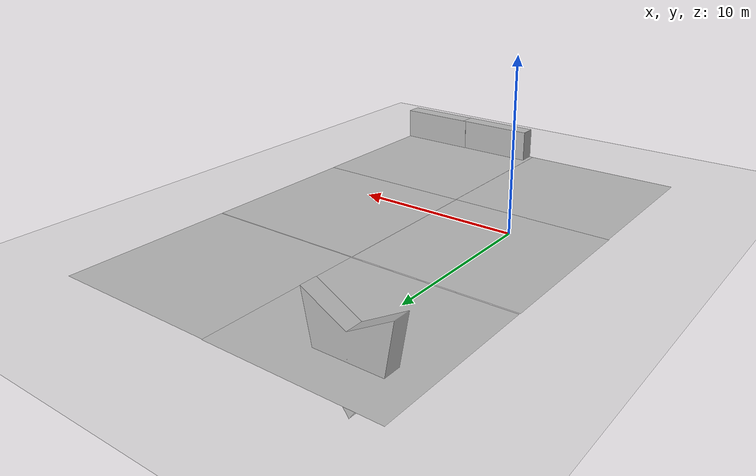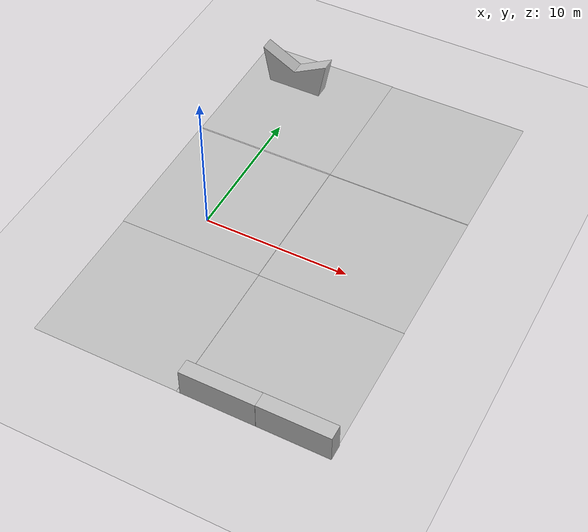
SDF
<sdf version="1.6">
 <world name="default">
  <model name="ground_plane">
   <static>1</static>
   <link name="link">
    <collision name="collision">
     <geometry><plane><normal>0 0 1</normal><size>100 100</size></plane></geometry>
     <surface>
      <contact><collide_bitmask>65535</collide_bitmask></contact>
      <friction><ode><mu>100</mu><mu2>50</mu2></ode></friction>
     </surface>
    </collision>
    <visual name="visual">
     <cast_shadows>0</cast_shadows>
     <geometry><plane><normal>0 0 1</normal><size>100 100</size></plane></geometry>
     <material>
      <script><uri>file://media/materials/scripts/gazebo.material</uri><name>Gazebo/Grey</name></script>
     </material>
    </visual>
   </link>
  </model>
  <gravity>0 0 -9.81</gravity>
  <magnetic_field>6e-06 2.3e-05 -4.2e-05</magnetic_field>
  <atmosphere type="adiabatic"/>
  <physics type="ode">
   <max_step_size>0.0005</max_step_size>
   <real_time_factor>0.4</real_time_factor>
   <real_time_update_rate>800</real_time_update_rate>
   <gravity>0 0 -9.81</gravity>
   <ode>
    <solver><type>quick</type><iters>80</iters><sor>1.3</sor></solver>
    <constraints>
     <cfm>0.0</cfm>
     <erp>0.2</erp>
     <contact_max_correcting_vel>0.1</contact_max_correcting_vel>
     <contact_surface_layer>0.0001</contact_surface_layer>
    </constraints>
   </ode>
  </physics>
  <scene><ambient>0.4 0.4 0.4 1</ambient><background>0.7 0.7 0.7 1</background><shadows>1</shadows></scene>
  <spherical_coordinates>
   <surface_model>EARTH_WGS84</surface_model>
   <latitude_deg>0</latitude_deg>
   <longitude_deg>0</longitude_deg>
   <elevation>0</elevation>
   <heading_deg>0</heading_deg>
  </spherical_coordinates>
  <light name="sun" type="directional">
   <pose>0.497618 0.909063 10 0 -0 0</pose>
   <diffuse>0.8 0.8 0.8 1</diffuse>
   <specular>0.2 0.2 0.2 1</specular>
   <attenuation>
    <range>1000</range>
    <constant>0.9</constant>
    <linear>0.01</linear>
    <quadratic>0.001</quadratic>
   </attenuation>
   <direction>-0.5 0.1 -0.9</direction>
   <spot><inner_angle>0</inner_angle><outer_angle>0</outer_angle><falloff>0</falloff></spot>
  </light>
  <model name="grass_plane">
   <static>1</static>
   <link name="grass_plane">
    <visual name="visual">
     <geometry>
      <mesh><uri>model://grass_plane/materials/meshes/grass_plane.dae</uri><scale>0.5 0.5 1</scale></mesh>
     </geometry>
    </visual>
    <collision name="collision">
     <geometry>
      <mesh><uri>model://grass_plane/materials/meshes/grass_plane.dae</uri><scale>0.5 0.5 1</scale></mesh>
     </geometry>
     <surface>
      <friction><ode><mu>60</mu><mu2>30</mu2></ode></friction>
      <contact>
       <ode>
        <soft_cfm>0</soft_cfm>
        <soft_erp>0.2</soft_erp>
        <kp>1e+06</kp>
        <kd>1</kd>
        <max_vel>100</max_vel>
        <min_depth>0.001</min_depth>
       </ode>
      </contact>
     </surface>
    </collision>
   </link>
   <pose>0.193119 -7.55427 0.001 0 -0 0</pose>
  </model>
  <model name="road_straight">
   <static>1</static>
   <link name="road_straight">
    <visual name="visual">
     <geometry>
      <mesh><uri>model://road_straight/materials/meshes/road_straight.dae</uri><scale>0.5 0.5 1</scale></mesh>
     </geometry>
    </visual>
    <collision name="collision">
     <geometry>
      <mesh><uri>model://road_straight/materials/meshes/road_straight.dae</uri><scale>0.5 0.5 1</scale></mesh>
     </geometry>
     <surface><friction><ode><mu>100</mu><mu2>50</mu2></ode></friction></surface>
    </collision>
   </link>
   <pose>0.161408 2.42119 0.001 0 -0 0</pose>
  </model>
  <model name="sand_plane">
   <static>1</static>
   <link name="sand_plane">
    <visual name="visual">
     <geometry>
      <mesh><uri>model://sand_plane/materials/meshes/sand_plane.dae</uri><scale>0.5 0.5 1</scale></mesh>
     </geometry>
    </visual>
    <collision name="collision">
     <geometry>
      <mesh><uri>model://sand_plane/materials/meshes/sand_plane.dae</uri><scale>0.5 0.5 1</scale></mesh>
     </geometry>
     <surface><friction><ode><mu>40</mu><mu2>20</mu2></ode></friction></surface>
    </collision>
   </link>
   <pose>0.186349 12.504 0.001 0 -0 0</pose>
  </model>
  <model name="masonry_road">
   <static>1</static>
   <link name="masonry_road">
    <visual name="visual">
     <geometry>
      <mesh><uri>model://masonry_road/materials/meshes/masonry_road.dae</uri><scale>0.5 0.5 1</scale></mesh>
     </geometry>
    </visual>
    <collision name="collision">
     <geometry>
      <mesh><uri>model://masonry_road/materials/meshes/masonry_road.dae</uri><scale>0.5 0.5 1</scale></mesh>
     </geometry>
     <surface><friction><ode><mu>80</mu><mu2>40</mu2></ode></friction></surface>
    </collision>
   </link>
   <pose>10.2083 -7.57406 0.001 0 -0 0</pose>
  </model>
  <model name="manas">
   <static>1</static>
   <link name="manas">
    <visual name="visual">
     <geometry>
      <mesh><uri>model://manas/materials/meshes/manas.dae</uri><scale>0.5 0.5 0.5</scale></mesh>
     </geometry>
    </visual>
    <collision name="collision">
     <geometry>
      <mesh><uri>model://manas/materials/meshes/manas.dae</uri><scale>0.5 0.5 0.5</scale></mesh>
     </geometry>
    </collision>
   </link>
   <pose>-1.03111 14.6489 0 0 -0 0</pose>
  </model>
  <model name="sand_plane_0">
   <static>1</static>
   <link name="sand_plane">
    <visual name="visual">
     <geometry>
      <mesh><uri>model://sand_plane/materials/meshes/sand_plane.dae</uri><scale>0.5 0.5 1</scale></mesh>
     </geometry>
    </visual>
    <collision name="collision">
     <geometry>
      <mesh><uri>model://sand_plane/materials/meshes/sand_plane.dae</uri><scale>0.5 0.5 1</scale></mesh>
     </geometry>
     <surface><friction><ode><mu>40</mu><mu2>20</mu2></ode></friction></surface>
    </collision>
   </link>
   <pose>10.1784 12.4677 0.001 0 -0 0</pose>
  </model>
  <model name="road_straight_0">
   <static>1</static>
   <link name="road_straight">
    <visual name="visual">
     <geometry>
      <mesh><uri>model://road_straight/materials/meshes/road_straight.dae</uri><scale>0.5 0.5 1</scale></mesh>
     </geometry>
    </visual>
    <collision name="collision">
     <geometry>
      <mesh><uri>model://road_straight/materials/meshes/road_straight.dae</uri><scale>0.5 0.5 1</scale></mesh>
     </geometry>
     <surface><friction><ode><mu>100</mu><mu2>50</mu2></ode></friction></surface>
    </collision>
   </link>
   <pose>10.1842 2.42234 0.001 0 -0 0</pose>
  </model>
  <model name="bush">
   <static>1</static>
   <link name="chassis">
    <pose>0 0 1 0 -0 0</pose>
    <collision name="collision"><geometry><box><size>5 1 2</size></box></geometry></collision>
    <visual name="visual">
     <geometry><mesh><uri>model://bush/meshes/bush.dae</uri><scale>5 1 2</scale></mesh></geometry>
     <material>
      <script>
       <uri>model://bush/materials/scripts</uri>
       <uri>model://bush/materials/textures</uri>
       <name>Bush/Diffuse</name>
      </script>
     </material>
    </visual>
   </link>
   <pose>7.95051 -12.0741 0 0 -0 0</pose>
  </model>
  <model name="bush_0">
   <static>1</static>
   <link name="chassis">
    <pose>0 0 1 0 -0 0</pose>
    <collision name="collision"><geometry><box><size>5 1 2</size></box></geometry></collision>
    <visual name="visual">
     <geometry><mesh><uri>model://bush/meshes/bush.dae</uri><scale>5 1 2</scale></mesh></geometry>
     <material>
      <script>
       <uri>model://bush/materials/scripts</uri>
       <uri>model://bush/materials/textures</uri>
       <name>Bush/Diffuse</name>
      </script>
     </material>
    </visual>
   </link>
   <pose>12.7661 -12.0594 0 0 -0 0</pose>
  </model>
  <audio><device>default</device></audio>
 </world>
</sdf>
